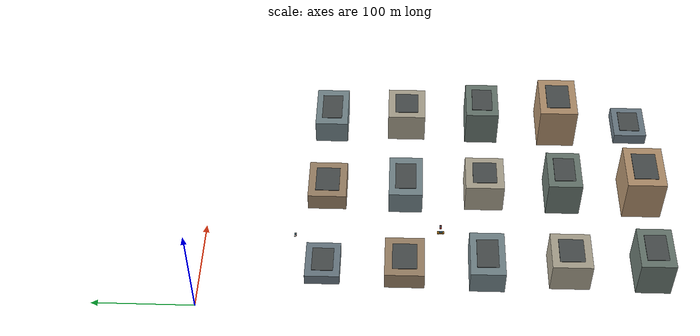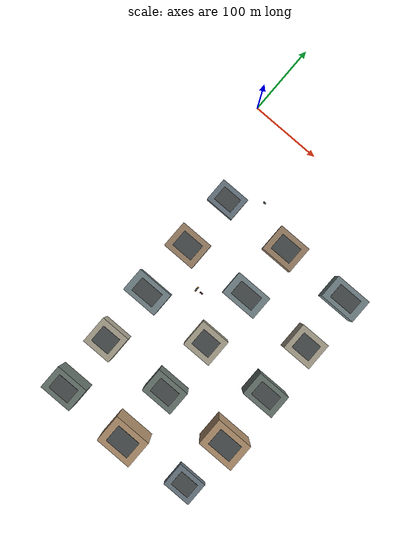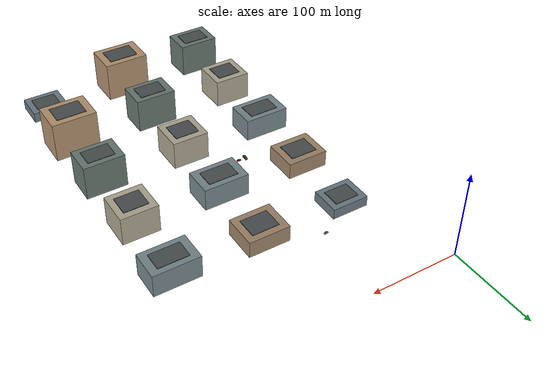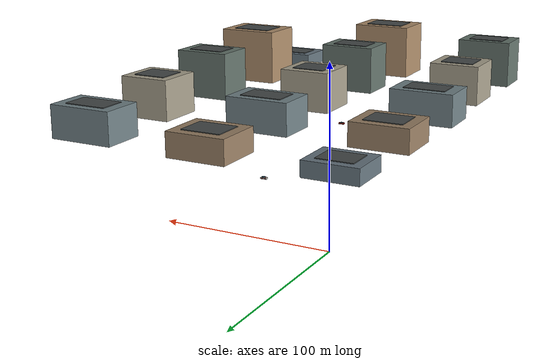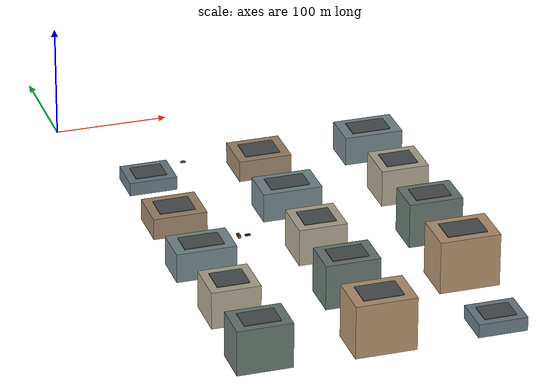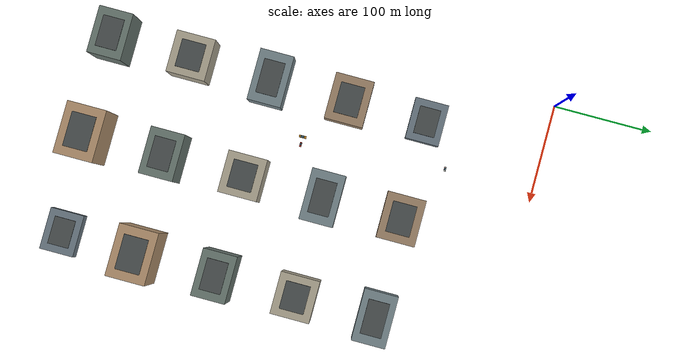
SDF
<sdf version="1.9">
 <world name="smart_city">
  <model name="chennai_block_004">
   <static>true</static>
   <pose>50 -440 0 0 0 0</pose>
   <link name="building">
    <collision name="structure">
     <pose>0 0 20.0 0 0 0</pose>
     <geometry><box><size>47 34 40</size></box></geometry>
    </collision>
    <visual name="facade">
     <pose>0 0 20.0 0 0 0</pose>
     <geometry><box><size>47 34 40</size></box></geometry>
     <material><ambient>0.41 0.47 0.44 1</ambient><diffuse>0.41 0.47 0.44 1</diffuse></material>
    </visual>
    <visual name="roof">
     <pose>0 0 40.3 0 0 0</pose>
     <geometry><box><size>31.0 21.1 0.6</size></box></geometry>
     <material><ambient>0.29 0.31 0.31 1</ambient><diffuse>0.29 0.31 0.31 1</diffuse></material>
    </visual>
   </link>
  </model>
  <model name="chennai_block_005">
   <static>true</static>
   <pose>150 -440 0 0 0 0</pose>
   <link name="building">
    <collision name="structure">
     <pose>0 0 23.5 0 0 0</pose>
     <geometry><box><size>52 39 47</size></box></geometry>
    </collision>
    <visual name="facade">
     <pose>0 0 23.5 0 0 0</pose>
     <geometry><box><size>52 39 47</size></box></geometry>
     <material><ambient>0.70 0.57 0.43 1</ambient><diffuse>0.70 0.57 0.43 1</diffuse></material>
    </visual>
    <visual name="roof">
     <pose>0 0 47.3 0 0 0</pose>
     <geometry><box><size>34.3 24.2 0.6</size></box></geometry>
     <material><ambient>0.29 0.31 0.31 1</ambient><diffuse>0.29 0.31 0.31 1</diffuse></material>
    </visual>
   </link>
  </model>
  <model name="chennai_block_006">
   <static>true</static>
   <pose>250 -440 0 0 0 0</pose>
   <link name="building">
    <collision name="structure">
     <pose>0 0 6.0 0 0 0</pose>
     <geometry><box><size>42 34 12</size></box></geometry>
    </collision>
    <visual name="facade">
     <pose>0 0 6.0 0 0 0</pose>
     <geometry><box><size>42 34 12</size></box></geometry>
     <material><ambient>0.42 0.48 0.52 1</ambient><diffuse>0.42 0.48 0.52 1</diffuse></material>
    </visual>
    <visual name="roof">
     <pose>0 0 12.3 0 0 0</pose>
     <geometry><box><size>27.7 21.1 0.6</size></box></geometry>
     <material><ambient>0.29 0.31 0.31 1</ambient><diffuse>0.29 0.31 0.31 1</diffuse></material>
    </visual>
   </link>
  </model>
  <model name="chennai_block_015">
   <static>true</static>
   <pose>50 -360 0 0 0 0</pose>
   <link name="building">
    <collision name="structure">
     <pose>0 0 16.5 0 0 0</pose>
     <geometry><box><size>42 39 33</size></box></geometry>
    </collision>
    <visual name="facade">
     <pose>0 0 16.5 0 0 0</pose>
     <geometry><box><size>42 39 33</size></box></geometry>
     <material><ambient>0.68 0.65 0.57 1</ambient><diffuse>0.68 0.65 0.57 1</diffuse></material>
    </visual>
    <visual name="roof">
     <pose>0 0 33.3 0 0 0</pose>
     <geometry><box><size>27.7 24.2 0.6</size></box></geometry>
     <material><ambient>0.29 0.31 0.31 1</ambient><diffuse>0.29 0.31 0.31 1</diffuse></material>
    </visual>
   </link>
  </model>
  <model name="chennai_block_016">
   <static>true</static>
   <pose>150 -360 0 0 0 0</pose>
   <link name="building">
    <collision name="structure">
     <pose>0 0 20.0 0 0 0</pose>
     <geometry><box><size>47 34 40</size></box></geometry>
    </collision>
    <visual name="facade">
     <pose>0 0 20.0 0 0 0</pose>
     <geometry><box><size>47 34 40</size></box></geometry>
     <material><ambient>0.41 0.47 0.44 1</ambient><diffuse>0.41 0.47 0.44 1</diffuse></material>
    </visual>
    <visual name="roof">
     <pose>0 0 40.3 0 0 0</pose>
     <geometry><box><size>31.0 21.1 0.6</size></box></geometry>
     <material><ambient>0.29 0.31 0.31 1</ambient><diffuse>0.29 0.31 0.31 1</diffuse></material>
    </visual>
   </link>
  </model>
  <model name="chennai_block_017">
   <static>true</static>
   <pose>250 -360 0 0 0 0</pose>
   <link name="building">
    <collision name="structure">
     <pose>0 0 23.5 0 0 0</pose>
     <geometry><box><size>52 39 47</size></box></geometry>
    </collision>
    <visual name="facade">
     <pose>0 0 23.5 0 0 0</pose>
     <geometry><box><size>52 39 47</size></box></geometry>
     <material><ambient>0.70 0.57 0.43 1</ambient><diffuse>0.70 0.57 0.43 1</diffuse></material>
    </visual>
    <visual name="roof">
     <pose>0 0 47.3 0 0 0</pose>
     <geometry><box><size>34.3 24.2 0.6</size></box></geometry>
     <material><ambient>0.29 0.31 0.31 1</ambient><diffuse>0.29 0.31 0.31 1</diffuse></material>
    </visual>
   </link>
  </model>
  <model name="chennai_block_026">
   <static>true</static>
   <pose>50 -280 0 0 0 0</pose>
   <link name="building">
    <collision name="structure">
     <pose>0 0 13.0 0 0 0</pose>
     <geometry><box><size>52 34 26</size></box></geometry>
    </collision>
    <visual name="facade">
     <pose>0 0 13.0 0 0 0</pose>
     <geometry><box><size>52 34 26</size></box></geometry>
     <material><ambient>0.46 0.53 0.55 1</ambient><diffuse>0.46 0.53 0.55 1</diffuse></material>
    </visual>
    <visual name="roof">
     <pose>0 0 26.3 0 0 0</pose>
     <geometry><box><size>34.3 21.1 0.6</size></box></geometry>
     <material><ambient>0.29 0.31 0.31 1</ambient><diffuse>0.29 0.31 0.31 1</diffuse></material>
    </visual>
   </link>
  </model>
  <model name="chennai_block_027">
   <static>true</static>
   <pose>150 -280 0 0 0 0</pose>
   <link name="building">
    <collision name="structure">
     <pose>0 0 16.5 0 0 0</pose>
     <geometry><box><size>42 39 33</size></box></geometry>
    </collision>
    <visual name="facade">
     <pose>0 0 16.5 0 0 0</pose>
     <geometry><box><size>42 39 33</size></box></geometry>
     <material><ambient>0.68 0.65 0.57 1</ambient><diffuse>0.68 0.65 0.57 1</diffuse></material>
    </visual>
    <visual name="roof">
     <pose>0 0 33.3 0 0 0</pose>
     <geometry><box><size>27.7 24.2 0.6</size></box></geometry>
     <material><ambient>0.29 0.31 0.31 1</ambient><diffuse>0.29 0.31 0.31 1</diffuse></material>
    </visual>
   </link>
  </model>
  <model name="chennai_block_028">
   <static>true</static>
   <pose>250 -280 0 0 0 0</pose>
   <link name="building">
    <collision name="structure">
     <pose>0 0 20.0 0 0 0</pose>
     <geometry><box><size>47 34 40</size></box></geometry>
    </collision>
    <visual name="facade">
     <pose>0 0 20.0 0 0 0</pose>
     <geometry><box><size>47 34 40</size></box></geometry>
     <material><ambient>0.41 0.47 0.44 1</ambient><diffuse>0.41 0.47 0.44 1</diffuse></material>
    </visual>
    <visual name="roof">
     <pose>0 0 40.3 0 0 0</pose>
     <geometry><box><size>31.0 21.1 0.6</size></box></geometry>
     <material><ambient>0.29 0.31 0.31 1</ambient><diffuse>0.29 0.31 0.31 1</diffuse></material>
    </visual>
   </link>
  </model>
  <model name="chennai_block_037">
   <static>true</static>
   <pose>50 -200 0 0 0 0</pose>
   <link name="building">
    <collision name="structure">
     <pose>0 0 9.5 0 0 0</pose>
     <geometry><box><size>47 39 19</size></box></geometry>
    </collision>
    <visual name="facade">
     <pose>0 0 9.5 0 0 0</pose>
     <geometry><box><size>47 39 19</size></box></geometry>
     <material><ambient>0.62 0.52 0.41 1</ambient><diffuse>0.62 0.52 0.41 1</diffuse></material>
    </visual>
    <visual name="roof">
     <pose>0 0 19.3 0 0 0</pose>
     <geometry><box><size>31.0 24.2 0.6</size></box></geometry>
     <material><ambient>0.29 0.31 0.31 1</ambient><diffuse>0.29 0.31 0.31 1</diffuse></material>
    </visual>
   </link>
  </model>
  <model name="chennai_block_038">
   <static>true</static>
   <pose>150 -200 0 0 0 0</pose>
   <link name="building">
    <collision name="structure">
     <pose>0 0 13.0 0 0 0</pose>
     <geometry><box><size>52 34 26</size></box></geometry>
    </collision>
    <visual name="facade">
     <pose>0 0 13.0 0 0 0</pose>
     <geometry><box><size>52 34 26</size></box></geometry>
     <material><ambient>0.46 0.53 0.55 1</ambient><diffuse>0.46 0.53 0.55 1</diffuse></material>
    </visual>
    <visual name="roof">
     <pose>0 0 26.3 0 0 0</pose>
     <geometry><box><size>34.3 21.1 0.6</size></box></geometry>
     <material><ambient>0.29 0.31 0.31 1</ambient><diffuse>0.29 0.31 0.31 1</diffuse></material>
    </visual>
   </link>
  </model>
  <model name="chennai_block_039">
   <static>true</static>
   <pose>250 -200 0 0 0 0</pose>
   <link name="building">
    <collision name="structure">
     <pose>0 0 16.5 0 0 0</pose>
     <geometry><box><size>42 39 33</size></box></geometry>
    </collision>
    <visual name="facade">
     <pose>0 0 16.5 0 0 0</pose>
     <geometry><box><size>42 39 33</size></box></geometry>
     <material><ambient>0.68 0.65 0.57 1</ambient><diffuse>0.68 0.65 0.57 1</diffuse></material>
    </visual>
    <visual name="roof">
     <pose>0 0 33.3 0 0 0</pose>
     <geometry><box><size>27.7 24.2 0.6</size></box></geometry>
     <material><ambient>0.29 0.31 0.31 1</ambient><diffuse>0.29 0.31 0.31 1</diffuse></material>
    </visual>
   </link>
  </model>
  <model name="chennai_block_048">
   <static>true</static>
   <pose>50 -120 0 0 0 0</pose>
   <link name="building">
    <collision name="structure">
     <pose>0 0 6.0 0 0 0</pose>
     <geometry><box><size>42 34 12</size></box></geometry>
    </collision>
    <visual name="facade">
     <pose>0 0 6.0 0 0 0</pose>
     <geometry><box><size>42 34 12</size></box></geometry>
     <material><ambient>0.42 0.48 0.52 1</ambient><diffuse>0.42 0.48 0.52 1</diffuse></material>
    </visual>
    <visual name="roof">
     <pose>0 0 12.3 0 0 0</pose>
     <geometry><box><size>27.7 21.1 0.6</size></box></geometry>
     <material><ambient>0.29 0.31 0.31 1</ambient><diffuse>0.29 0.31 0.31 1</diffuse></material>
    </visual>
   </link>
  </model>
  <model name="chennai_block_049">
   <static>true</static>
   <pose>150 -120 0 0 0 0</pose>
   <link name="building">
    <collision name="structure">
     <pose>0 0 9.5 0 0 0</pose>
     <geometry><box><size>47 39 19</size></box></geometry>
    </collision>
    <visual name="facade">
     <pose>0 0 9.5 0 0 0</pose>
     <geometry><box><size>47 39 19</size></box></geometry>
     <material><ambient>0.62 0.52 0.41 1</ambient><diffuse>0.62 0.52 0.41 1</diffuse></material>
    </visual>
    <visual name="roof">
     <pose>0 0 19.3 0 0 0</pose>
     <geometry><box><size>31.0 24.2 0.6</size></box></geometry>
     <material><ambient>0.29 0.31 0.31 1</ambient><diffuse>0.29 0.31 0.31 1</diffuse></material>
    </visual>
   </link>
  </model>
  <model name="chennai_block_050">
   <static>true</static>
   <pose>250 -120 0 0 0 0</pose>
   <link name="building">
    <collision name="structure">
     <pose>0 0 13.0 0 0 0</pose>
     <geometry><box><size>52 34 26</size></box></geometry>
    </collision>
    <visual name="facade">
     <pose>0 0 13.0 0 0 0</pose>
     <geometry><box><size>52 34 26</size></box></geometry>
     <material><ambient>0.46 0.53 0.55 1</ambient><diffuse>0.46 0.53 0.55 1</diffuse></material>
    </visual>
    <visual name="roof">
     <pose>0 0 26.3 0 0 0</pose>
     <geometry><box><size>34.3 21.1 0.6</size></box></geometry>
     <material><ambient>0.29 0.31 0.31 1</ambient><diffuse>0.29 0.31 0.31 1</diffuse></material>
    </visual>
   </link>
  </model>
  <model name="chennai_traffic_05">
   <static>false</static>
   <pose>96 -236 0 0 0 1.5708</pose>
   <link name="base_link">
    <pose>0 0 1.25 0 0 0</pose>
    <inertial>
     <mass>900</mass>
     <inertia><ixx>675.0</ixx><iyy>990.0</iyy><izz>1260.0</izz><ixy>0</ixy><ixz>0</ixz><iyz>0</iyz></inertia>
    </inertial>
    <collision name="body_collision"><geometry><box><size>7.2 2.35 1.57</size></box></geometry></collision>
    <visual name="body">
     <geometry><box><size>7.2 2.35 1.57</size></box></geometry>
     <material><ambient>0.72 0.47 0.08 1</ambient><diffuse>0.72 0.47 0.08 1</diffuse></material>
    </visual>
    <visual name="cabin">
     <pose>-0.15 0 1.03 0 0 0</pose>
     <geometry><box><size>3.456 1.93 1.03</size></box></geometry>
     <material><ambient>0.20 0.35 0.42 1</ambient><diffuse>0.20 0.35 0.42 1</diffuse></material>
    </visual>
    <visual name="bus_window_-2_7">
     <pose>-2.7 -1.200 0.92 0 0 0</pose>
     <geometry><box><size>0.72 0.05 0.72</size></box></geometry>
     <material><ambient>0.16 0.46 0.58 1</ambient><diffuse>0.16 0.46 0.58 1</diffuse></material>
    </visual>
    <visual name="bus_window_-1_65">
     <pose>-1.65 -1.200 0.92 0 0 0</pose>
     <geometry><box><size>0.72 0.05 0.72</size></box></geometry>
     <material><ambient>0.16 0.46 0.58 1</ambient><diffuse>0.16 0.46 0.58 1</diffuse></material>
    </visual>
    <visual name="bus_window_-0_6">
     <pose>-0.6 -1.200 0.92 0 0 0</pose>
     <geometry><box><size>0.72 0.05 0.72</size></box></geometry>
     <material><ambient>0.16 0.46 0.58 1</ambient><diffuse>0.16 0.46 0.58 1</diffuse></material>
    </visual>
    <visual name="bus_window_0_6">
     <pose>0.6 -1.200 0.92 0 0 0</pose>
     <geometry><box><size>0.72 0.05 0.72</size></box></geometry>
     <material><ambient>0.16 0.46 0.58 1</ambient><diffuse>0.16 0.46 0.58 1</diffuse></material>
    </visual>
    <visual name="bus_window_1_65">
     <pose>1.65 -1.200 0.92 0 0 0</pose>
     <geometry><box><size>0.72 0.05 0.72</size></box></geometry>
     <material><ambient>0.16 0.46 0.58 1</ambient><diffuse>0.16 0.46 0.58 1</diffuse></material>
    </visual>
    <visual name="bus_window_2_7">
     <pose>2.7 -1.200 0.92 0 0 0</pose>
     <geometry><box><size>0.72 0.05 0.72</size></box></geometry>
     <material><ambient>0.16 0.46 0.58 1</ambient><diffuse>0.16 0.46 0.58 1</diffuse></material>
    </visual>
    <collision name="wheel_collision_r_r">
     <pose>-2.23 -1.08 -0.80 1.5708 0 0</pose>
     <geometry><cylinder><radius>0.45</radius><length>0.20</length></cylinder></geometry>
     <surface><friction><ode><mu>0.004</mu><mu2>0.004</mu2></ode></friction></surface>
    </collision>
    <visual name="wheel_r_r">
     <pose>-2.23 -1.08 -0.80 1.5708 0 0</pose>
     <geometry><cylinder><radius>0.45</radius><length>0.20</length></cylinder></geometry>
     <material><ambient>0.055 0.055 0.06 1</ambient><diffuse>0.055 0.055 0.06 1</diffuse></material>
    </visual>
    <collision name="wheel_collision_r_l">
     <pose>-2.23 1.08 -0.80 1.5708 0 0</pose>
     <geometry><cylinder><radius>0.45</radius><length>0.20</length></cylinder></geometry>
     <surface><friction><ode><mu>0.004</mu><mu2>0.004</mu2></ode></friction></surface>
    </collision>
    <visual name="wheel_r_l">
     <pose>-2.23 1.08 -0.80 1.5708 0 0</pose>
     <geometry><cylinder><radius>0.45</radius><length>0.20</length></cylinder></geometry>
     <material><ambient>0.055 0.055 0.06 1</ambient><diffuse>0.055 0.055 0.06 1</diffuse></material>
    </visual>
    <collision name="wheel_collision_f_r">
     <pose>2.23 -1.08 -0.80 1.5708 0 0</pose>
     <geometry><cylinder><radius>0.45</radius><length>0.20</length></cylinder></geometry>
     <surface><friction><ode><mu>0.004</mu><mu2>0.004</mu2></ode></friction></surface>
    </collision>
    <visual name="wheel_f_r">
     <pose>2.23 -1.08 -0.80 1.5708 0 0</pose>
     <geometry><cylinder><radius>0.45</radius><length>0.20</length></cylinder></geometry>
     <material><ambient>0.055 0.055 0.06 1</ambient><diffuse>0.055 0.055 0.06 1</diffuse></material>
    </visual>
    <collision name="wheel_collision_f_l">
     <pose>2.23 1.08 -0.80 1.5708 0 0</pose>
     <geometry><cylinder><radius>0.45</radius><length>0.20</length></cylinder></geometry>
     <surface><friction><ode><mu>0.004</mu><mu2>0.004</mu2></ode></friction></surface>
    </collision>
    <visual name="wheel_f_l">
     <pose>2.23 1.08 -0.80 1.5708 0 0</pose>
     <geometry><cylinder><radius>0.45</radius><length>0.20</length></cylinder></geometry>
     <material><ambient>0.055 0.055 0.06 1</ambient><diffuse>0.055 0.055 0.06 1</diffuse></material>
    </visual>
   </link>
   <plugin filename="gz-sim-trajectory-follower-system" name="gz::sim::systems::TrajectoryFollower">
    <link_name>base_link</link_name>
    <loop>true</loop>
    <range_tolerance>3.0</range_tolerance>
    <bearing_tolerance>8.0</bearing_tolerance>
    <force>90</force>
    <torque>220</torque>
    <waypoints>
     <waypoint>96 -236</waypoint>
     <waypoint>96 -84</waypoint>
     <waypoint>-96 -84</waypoint>
     <waypoint>-96 -236</waypoint>
    </waypoints>
   </plugin>
  </model>
  <model name="chennai_traffic_07">
   <static>false</static>
   <pose>104 -236 0 0 0 0.0000</pose>
   <link name="base_link">
    <pose>0 0 0.72 0 0 0</pose>
    <inertial>
     <mass>650</mass>
     <inertia><ixx>487.5</ixx><iyy>715.0</iyy><izz>910.0</izz><ixy>0</ixy><ixz>0</ixz><iyz>0</iyz></inertia>
    </inertial>
    <collision name="body_collision"><geometry><box><size>4.5 1.95 0.96</size></box></geometry></collision>
    <visual name="body">
     <geometry><box><size>4.5 1.95 0.96</size></box></geometry>
     <material><ambient>0.72 0.14 0.08 1</ambient><diffuse>0.72 0.14 0.08 1</diffuse></material>
    </visual>
    <visual name="cabin">
     <pose>-0.15 0 0.63 0 0 0</pose>
     <geometry><box><size>2.16 1.60 0.63</size></box></geometry>
     <material><ambient>0.20 0.35 0.42 1</ambient><diffuse>0.20 0.35 0.42 1</diffuse></material>
    </visual>
    <collision name="wheel_collision_r_r">
     <pose>-1.40 -0.90 -0.38 1.5708 0 0</pose>
     <geometry><cylinder><radius>0.34</radius><length>0.20</length></cylinder></geometry>
     <surface><friction><ode><mu>0.004</mu><mu2>0.004</mu2></ode></friction></surface>
    </collision>
    <visual name="wheel_r_r">
     <pose>-1.40 -0.90 -0.38 1.5708 0 0</pose>
     <geometry><cylinder><radius>0.34</radius><length>0.20</length></cylinder></geometry>
     <material><ambient>0.055 0.055 0.06 1</ambient><diffuse>0.055 0.055 0.06 1</diffuse></material>
    </visual>
    <collision name="wheel_collision_r_l">
     <pose>-1.40 0.90 -0.38 1.5708 0 0</pose>
     <geometry><cylinder><radius>0.34</radius><length>0.20</length></cylinder></geometry>
     <surface><friction><ode><mu>0.004</mu><mu2>0.004</mu2></ode></friction></surface>
    </collision>
    <visual name="wheel_r_l">
     <pose>-1.40 0.90 -0.38 1.5708 0 0</pose>
     <geometry><cylinder><radius>0.34</radius><length>0.20</length></cylinder></geometry>
     <material><ambient>0.055 0.055 0.06 1</ambient><diffuse>0.055 0.055 0.06 1</diffuse></material>
    </visual>
    <collision name="wheel_collision_f_r">
     <pose>1.40 -0.90 -0.38 1.5708 0 0</pose>
     <geometry><cylinder><radius>0.34</radius><length>0.20</length></cylinder></geometry>
     <surface><friction><ode><mu>0.004</mu><mu2>0.004</mu2></ode></friction></surface>
    </collision>
    <visual name="wheel_f_r">
     <pose>1.40 -0.90 -0.38 1.5708 0 0</pose>
     <geometry><cylinder><radius>0.34</radius><length>0.20</length></cylinder></geometry>
     <material><ambient>0.055 0.055 0.06 1</ambient><diffuse>0.055 0.055 0.06 1</diffuse></material>
    </visual>
    <collision name="wheel_collision_f_l">
     <pose>1.40 0.90 -0.38 1.5708 0 0</pose>
     <geometry><cylinder><radius>0.34</radius><length>0.20</length></cylinder></geometry>
     <surface><friction><ode><mu>0.004</mu><mu2>0.004</mu2></ode></friction></surface>
    </collision>
    <visual name="wheel_f_l">
     <pose>1.40 0.90 -0.38 1.5708 0 0</pose>
     <geometry><cylinder><radius>0.34</radius><length>0.20</length></cylinder></geometry>
     <material><ambient>0.055 0.055 0.06 1</ambient><diffuse>0.055 0.055 0.06 1</diffuse></material>
    </visual>
   </link>
   <plugin filename="gz-sim-trajectory-follower-system" name="gz::sim::systems::TrajectoryFollower">
    <link_name>base_link</link_name>
    <loop>true</loop>
    <range_tolerance>3.0</range_tolerance>
    <bearing_tolerance>8.0</bearing_tolerance>
    <force>90</force>
    <torque>220</torque>
    <waypoints>
     <waypoint>104 -236</waypoint>
     <waypoint>296 -236</waypoint>
     <waypoint>296 -84</waypoint>
     <waypoint>104 -84</waypoint>
    </waypoints>
   </plugin>
  </model>
  <model name="chennai_ambulance_03">
   <static>false</static>
   <pose>90 -90 0 0 0 3.1416</pose>
   <link name="base_link">
    <pose>0 0 0.72 0 0 0</pose>
    <inertial>
     <mass>650</mass>
     <inertia><ixx>487.5</ixx><iyy>715.0</iyy><izz>910.0</izz><ixy>0</ixy><ixz>0</ixz><iyz>0</iyz></inertia>
    </inertial>
    <collision name="body_collision"><geometry><box><size>4.5 1.95 0.96</size></box></geometry></collision>
    <visual name="body">
     <geometry><box><size>4.5 1.95 0.96</size></box></geometry>
     <material><ambient>0.92 0.92 0.88 1</ambient><diffuse>0.92 0.92 0.88 1</diffuse></material>
    </visual>
    <visual name="cabin">
     <pose>-0.15 0 0.63 0 0 0</pose>
     <geometry><box><size>2.16 1.60 0.63</size></box></geometry>
     <material><ambient>0.20 0.35 0.42 1</ambient><diffuse>0.20 0.35 0.42 1</diffuse></material>
    </visual>
    <visual name="red_emergency_stripe_-1">
     <pose>0 -0.990 -0.06 0 0 0</pose>
     <geometry><box><size>3.42 0.035 0.28</size></box></geometry>
     <material><ambient>0.82 0.025 0.02 1</ambient><diffuse>0.82 0.025 0.02 1</diffuse></material>
    </visual>
    <visual name="red_emergency_stripe_1">
     <pose>0 0.990 -0.06 0 0 0</pose>
     <geometry><box><size>3.42 0.035 0.28</size></box></geometry>
     <material><ambient>0.82 0.025 0.02 1</ambient><diffuse>0.82 0.025 0.02 1</diffuse></material>
    </visual>
    <visual name="blue_lightbar">
     <pose>-0.1 0 0.8 0 0 0</pose>
     <geometry><box><size>0.8 0.3 0.16</size></box></geometry>
     <material>
      <ambient>0.02 0.16 0.95 1</ambient>
      <diffuse>0.02 0.16 0.95 1</diffuse>
      <emissive>0.02 0.08 0.65 1</emissive>
     </material>
    </visual>
    <visual name="roof_cross">
     <pose>1.25 0 0.66 0 0 0</pose>
     <geometry><box><size>0.3 0.92 0.08</size></box></geometry>
     <material><ambient>0.9 0.04 0.02 1</ambient><diffuse>0.9 0.04 0.02 1</diffuse></material>
    </visual>
    <collision name="wheel_collision_r_r">
     <pose>-1.40 -0.90 -0.38 1.5708 0 0</pose>
     <geometry><cylinder><radius>0.34</radius><length>0.20</length></cylinder></geometry>
     <surface><friction><ode><mu>0.004</mu><mu2>0.004</mu2></ode></friction></surface>
    </collision>
    <visual name="wheel_r_r">
     <pose>-1.40 -0.90 -0.38 1.5708 0 0</pose>
     <geometry><cylinder><radius>0.34</radius><length>0.20</length></cylinder></geometry>
     <material><ambient>0.055 0.055 0.06 1</ambient><diffuse>0.055 0.055 0.06 1</diffuse></material>
    </visual>
    <collision name="wheel_collision_r_l">
     <pose>-1.40 0.90 -0.38 1.5708 0 0</pose>
     <geometry><cylinder><radius>0.34</radius><length>0.20</length></cylinder></geometry>
     <surface><friction><ode><mu>0.004</mu><mu2>0.004</mu2></ode></friction></surface>
    </collision>
    <visual name="wheel_r_l">
     <pose>-1.40 0.90 -0.38 1.5708 0 0</pose>
     <geometry><cylinder><radius>0.34</radius><length>0.20</length></cylinder></geometry>
     <material><ambient>0.055 0.055 0.06 1</ambient><diffuse>0.055 0.055 0.06 1</diffuse></material>
    </visual>
    <collision name="wheel_collision_f_r">
     <pose>1.40 -0.90 -0.38 1.5708 0 0</pose>
     <geometry><cylinder><radius>0.34</radius><length>0.20</length></cylinder></geometry>
     <surface><friction><ode><mu>0.004</mu><mu2>0.004</mu2></ode></friction></surface>
    </collision>
    <visual name="wheel_f_r">
     <pose>1.40 -0.90 -0.38 1.5708 0 0</pose>
     <geometry><cylinder><radius>0.34</radius><length>0.20</length></cylinder></geometry>
     <material><ambient>0.055 0.055 0.06 1</ambient><diffuse>0.055 0.055 0.06 1</diffuse></material>
    </visual>
    <collision name="wheel_collision_f_l">
     <pose>1.40 0.90 -0.38 1.5708 0 0</pose>
     <geometry><cylinder><radius>0.34</radius><length>0.20</length></cylinder></geometry>
     <surface><friction><ode><mu>0.004</mu><mu2>0.004</mu2></ode></friction></surface>
    </collision>
    <visual name="wheel_f_l">
     <pose>1.40 0.90 -0.38 1.5708 0 0</pose>
     <geometry><cylinder><radius>0.34</radius><length>0.20</length></cylinder></geometry>
     <material><ambient>0.055 0.055 0.06 1</ambient><diffuse>0.055 0.055 0.06 1</diffuse></material>
    </visual>
   </link>
   <plugin filename="gz-sim-trajectory-follower-system" name="gz::sim::systems::TrajectoryFollower">
    <link_name>base_link</link_name>
    <loop>true</loop>
    <range_tolerance>3.0</range_tolerance>
    <bearing_tolerance>8.0</bearing_tolerance>
    <force>90</force>
    <torque>220</torque>
    <waypoints>
     <waypoint>90 -90</waypoint>
     <waypoint>-90 -90</waypoint>
     <waypoint>-90 -230</waypoint>
     <waypoint>90 -230</waypoint>
    </waypoints>
   </plugin>
  </model>
 </world>
</sdf>
